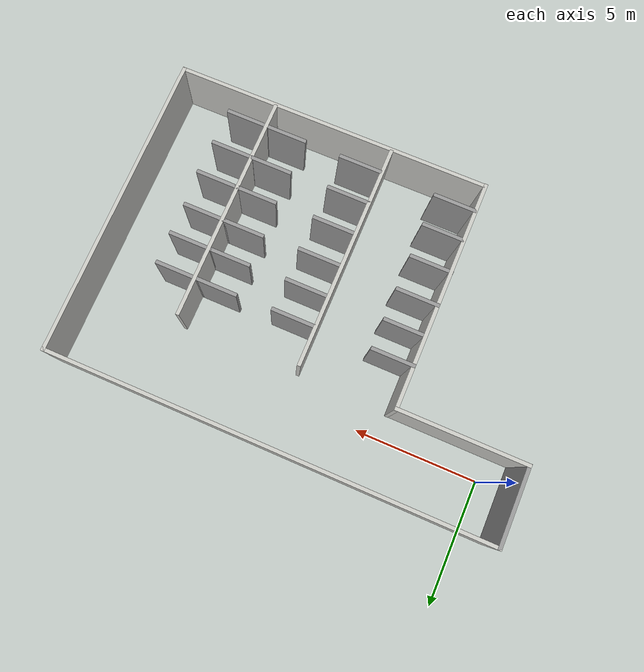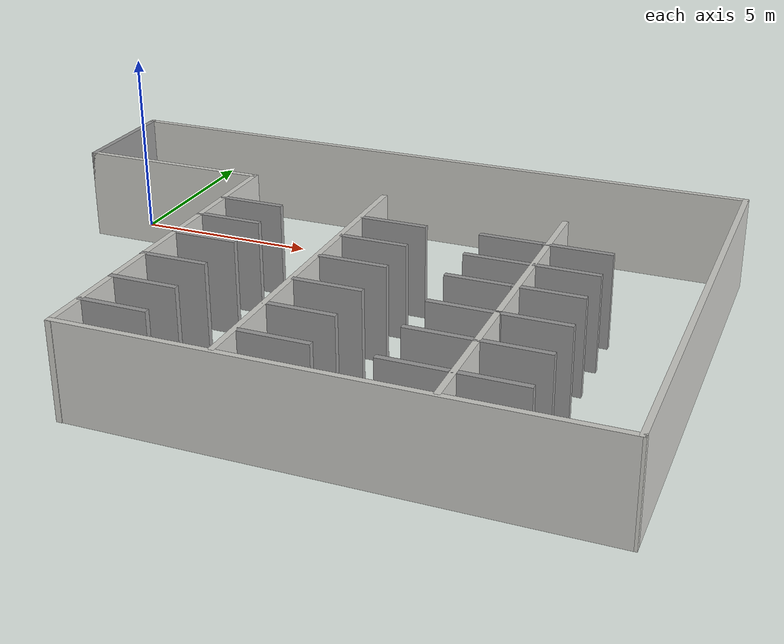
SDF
<?xml version='1.0'?>
<sdf version='1.7'>
  <model name='modwalls'>
    <pose>7.93964 -4.18565 0 0 -0 0</pose>
    <link name='Wall_0'>
      <collision name='Wall_0_Collision'>
        <geometry>
          <box>
            <size>5.25 0.15 2.5</size>
          </box>
        </geometry>
        <pose>0 0 1.25 0 -0 0</pose>
      </collision>
      <visual name='Wall_0_Visual'>
        <pose>0 0 1.25 0 -0 0</pose>
        <geometry>
          <box>
            <size>5.25 0.15 2.5</size>
          </box>
        </geometry>
        <material>
          <script>
            <uri>file://media/materials/scripts/gazebo.material</uri>
            <name>Gazebo/CeilingTiled</name>
          </script>
          <ambient>1 1 1 1</ambient>
        </material>
        <meta>
          <layer>0</layer>
        </meta>
      </visual>
      <pose>-6.37546 3.12129 0 0 -0 0</pose>
    </link>
    <link name='Wall_10'>
      <collision name='Wall_10_Collision'>
        <geometry>
          <box>
            <size>9.25 0.15 2.5</size>
          </box>
        </geometry>
        <pose>0 0 1.25 0 -0 0</pose>
      </collision>
      <visual name='Wall_10_Visual'>
        <pose>0 0 1.25 0 -0 0</pose>
        <geometry>
          <box>
            <size>9.25 0.15 2.5</size>
          </box>
        </geometry>
        <material>
          <script>
            <uri>file://media/materials/scripts/gazebo.material</uri>
            <name>Gazebo/CeilingTiled</name>
          </script>
          <ambient>1 1 1 1</ambient>
        </material>
        <meta>
          <layer>0</layer>
        </meta>
      </visual>
      <pose>0.045024 -1.54331 0 0 -0 1.5708</pose>
    </link>
    <link name='Wall_12'>
      <collision name='Wall_12_Collision'>
        <geometry>
          <box>
            <size>9.25 0.15 2.5</size>
          </box>
        </geometry>
        <pose>0 0 1.25 0 -0 0</pose>
      </collision>
      <visual name='Wall_12_Visual'>
        <pose>0 0 1.25 0 -0 0</pose>
        <geometry>
          <box>
            <size>9.25 0.15 2.5</size>
          </box>
        </geometry>
        <material>
          <script>
            <uri>file://media/materials/scripts/gazebo.material</uri>
            <name>Gazebo/CeilingTiled</name>
          </script>
          <ambient>1 1 1 1</ambient>
        </material>
        <meta>
          <layer>0</layer>
        </meta>
      </visual>
      <pose>4.94139 -1.52434 0 0 -0 1.5708</pose>
    </link>
    <link name='Wall_16'>
      <collision name='Wall_16_Collision'>
        <geometry>
          <box>
            <size>1.75 0.15 2.5</size>
          </box>
        </geometry>
        <pose>0 0 1.25 0 -0 0</pose>
      </collision>
      <visual name='Wall_16_Visual'>
        <pose>0 0 1.25 0 -0 0</pose>
        <geometry>
          <box>
            <size>1.75 0.15 2.5</size>
          </box>
        </geometry>
        <material>
          <script>
            <uri>file://media/materials/scripts/gazebo.material</uri>
            <name>Gazebo/Grey</name>
          </script>
          <ambient>1 1 1 1</ambient>
        </material>
        <meta>
          <layer>0</layer>
        </meta>
      </visual>
      <pose>-3.009 1.40429 0 0 -0 0</pose>
    </link>
    <link name='Wall_18'>
      <collision name='Wall_18_Collision'>
        <geometry>
          <box>
            <size>1.75 0.15 2.5</size>
          </box>
        </geometry>
        <pose>0 0 1.25 0 -0 0</pose>
      </collision>
      <visual name='Wall_18_Visual'>
        <pose>0 0 1.25 0 -0 0</pose>
        <geometry>
          <box>
            <size>1.75 0.15 2.5</size>
          </box>
        </geometry>
        <material>
          <script>
            <uri>file://media/materials/scripts/gazebo.material</uri>
            <name>Gazebo/Grey</name>
          </script>
          <ambient>1 1 1 1</ambient>
        </material>
        <meta>
          <layer>0</layer>
        </meta>
      </visual>
      <pose>-3.01741 0.196371 0 0 -0 0</pose>
    </link>
    <link name='Wall_20'>
      <collision name='Wall_20_Collision'>
        <geometry>
          <box>
            <size>1.75 0.15 2.5</size>
          </box>
        </geometry>
        <pose>0 0 1.25 0 -0 0</pose>
      </collision>
      <visual name='Wall_20_Visual'>
        <pose>0 0 1.25 0 -0 0</pose>
        <geometry>
          <box>
            <size>1.75 0.15 2.5</size>
          </box>
        </geometry>
        <material>
          <script>
            <uri>file://media/materials/scripts/gazebo.material</uri>
            <name>Gazebo/Grey</name>
          </script>
          <ambient>1 1 1 1</ambient>
        </material>
        <meta>
          <layer>0</layer>
        </meta>
      </visual>
      <pose>-3.0146 -1.07174 0 0 -0 0</pose>
    </link>
    <link name='Wall_24'>
      <collision name='Wall_24_Collision'>
        <geometry>
          <box>
            <size>1.75 0.15 2.5</size>
          </box>
        </geometry>
        <pose>0 0 1.25 0 -0 0</pose>
      </collision>
      <visual name='Wall_24_Visual'>
        <pose>0 0 1.25 0 -0 0</pose>
        <geometry>
          <box>
            <size>1.75 0.15 2.5</size>
          </box>
        </geometry>
        <material>
          <script>
            <uri>file://media/materials/scripts/gazebo.material</uri>
            <name>Gazebo/Grey</name>
          </script>
          <ambient>1 1 1 1</ambient>
        </material>
        <meta>
          <layer>0</layer>
        </meta>
      </visual>
      <pose>-3.00778 -3.83016 0 0 -0 0</pose>
    </link>
    <link name='Wall_28'>
      <collision name='Wall_28_Collision'>
        <geometry>
          <box>
            <size>1.75 0.15 2.5</size>
          </box>
        </geometry>
        <pose>0 0 1.25 0 -0 0</pose>
      </collision>
      <visual name='Wall_28_Visual'>
        <pose>0 0 1.25 0 -0 0</pose>
        <geometry>
          <box>
            <size>1.75 0.15 2.5</size>
          </box>
        </geometry>
        <material>
          <script>
            <uri>file://media/materials/scripts/gazebo.material</uri>
            <name>Gazebo/Grey</name>
          </script>
          <ambient>1 1 1 1</ambient>
        </material>
        <meta>
          <layer>0</layer>
        </meta>
      </visual>
      <pose>-2.984 -5.10548 0 0 -0 0</pose>
    </link>
    <link name='Wall_3'>
      <collision name='Wall_3_Collision'>
        <geometry>
          <box>
            <size>3.25 0.15 2.5</size>
          </box>
        </geometry>
        <pose>0 0 1.25 0 -0 0</pose>
      </collision>
      <visual name='Wall_3_Visual'>
        <pose>0 0 1.25 0 -0 0</pose>
        <geometry>
          <box>
            <size>3.25 0.15 2.5</size>
          </box>
        </geometry>
        <material>
          <script>
            <uri>file://media/materials/scripts/gazebo.material</uri>
            <name>Gazebo/Grey</name>
          </script>
          <ambient>1 1 1 1</ambient>
        </material>
        <meta>
          <layer>0</layer>
        </meta>
      </visual>
      <pose>-8.92546 4.67129 0 0 -0 1.5708</pose>
    </link>
    <link name='Wall_32'>
      <collision name='Wall_32_Collision'>
        <geometry>
          <box>
            <size>1.75 0.15 2.5</size>
          </box>
        </geometry>
        <pose>0 0 1.25 0 -0 0</pose>
      </collision>
      <visual name='Wall_32_Visual'>
        <pose>0 0 1.25 0 -0 0</pose>
        <geometry>
          <box>
            <size>1.75 0.15 2.5</size>
          </box>
        </geometry>
        <material>
          <script>
            <uri>file://media/materials/scripts/gazebo.material</uri>
            <name>Gazebo/Grey</name>
          </script>
          <ambient>1 1 1 1</ambient>
        </material>
        <meta>
          <layer>0</layer>
        </meta>
      </visual>
      <pose>-3.03139 -2.47058 0 0 -0 0</pose>
    </link>
    <link name='Wall_34'>
      <collision name='Wall_34_Collision'>
        <geometry>
          <box>
            <size>1.75 0.15 2.5</size>
          </box>
        </geometry>
        <pose>0 0 1.25 0 -0 0</pose>
      </collision>
      <visual name='Wall_34_Visual'>
        <pose>0 0 1.25 0 -0 0</pose>
        <geometry>
          <box>
            <size>1.75 0.15 2.5</size>
          </box>
        </geometry>
        <material>
          <script>
            <uri>file://media/materials/scripts/gazebo.material</uri>
            <name>Gazebo/Grey</name>
          </script>
          <ambient>1 1 1 1</ambient>
        </material>
        <meta>
          <layer>0</layer>
        </meta>
      </visual>
      <pose>0.950712 -5.15453 0 0 -0 0</pose>
    </link>
    <link name='Wall_36'>
      <collision name='Wall_36_Collision'>
        <geometry>
          <box>
            <size>1.75 0.15 2.5</size>
          </box>
        </geometry>
        <pose>0 0 1.25 0 -0 0</pose>
      </collision>
      <visual name='Wall_36_Visual'>
        <pose>0 0 1.25 0 -0 0</pose>
        <geometry>
          <box>
            <size>1.75 0.15 2.5</size>
          </box>
        </geometry>
        <material>
          <script>
            <uri>file://media/materials/scripts/gazebo.material</uri>
            <name>Gazebo/Grey</name>
          </script>
          <ambient>1 1 1 1</ambient>
        </material>
        <meta>
          <layer>0</layer>
        </meta>
      </visual>
      <pose>0.89612 -3.78973 0 0 -0 0</pose>
    </link>
    <link name='Wall_38'>
      <collision name='Wall_38_Collision'>
        <geometry>
          <box>
            <size>1.75 0.15 2.5</size>
          </box>
        </geometry>
        <pose>0 0 1.25 0 -0 0</pose>
      </collision>
      <visual name='Wall_38_Visual'>
        <pose>0 0 1.25 0 -0 0</pose>
        <geometry>
          <box>
            <size>1.75 0.15 2.5</size>
          </box>
        </geometry>
        <material>
          <script>
            <uri>file://media/materials/scripts/gazebo.material</uri>
            <name>Gazebo/Grey</name>
          </script>
          <ambient>1 1 1 1</ambient>
        </material>
        <meta>
          <layer>0</layer>
        </meta>
      </visual>
      <pose>0.932515 -2.44314 0 0 -0 0</pose>
    </link>
    <link name='Wall_4'>
      <collision name='Wall_4_Collision'>
        <geometry>
          <box>
            <size>18 0.15 2.5</size>
          </box>
        </geometry>
        <pose>0 0 1.25 0 -0 0</pose>
      </collision>
      <visual name='Wall_4_Visual'>
        <pose>0 0 1.25 0 -0 0</pose>
        <geometry>
          <box>
            <size>18 0.15 2.5</size>
          </box>
        </geometry>
        <material>
          <script>
            <uri>file://media/materials/scripts/gazebo.material</uri>
            <name>Gazebo/CeilingTiled</name>
          </script>
          <ambient>1 1 1 1</ambient>
        </material>
        <meta>
          <layer>0</layer>
        </meta>
      </visual>
      <pose>-0.000462 6.22129 0 0 -0 0</pose>
    </link>
    <link name='Wall_40'>
      <collision name='Wall_40_Collision'>
        <geometry>
          <box>
            <size>1.75 0.15 2.5</size>
          </box>
        </geometry>
        <pose>0 0 1.25 0 -0 0</pose>
      </collision>
      <visual name='Wall_40_Visual'>
        <pose>0 0 1.25 0 -0 0</pose>
        <geometry>
          <box>
            <size>1.75 0.15 2.5</size>
          </box>
        </geometry>
        <material>
          <script>
            <uri>file://media/materials/scripts/gazebo.material</uri>
            <name>Gazebo/Grey</name>
          </script>
          <ambient>1 1 1 1</ambient>
        </material>
        <meta>
          <layer>0</layer>
        </meta>
      </visual>
      <pose>0.950712 -1.06015 0 0 -0 0</pose>
    </link>
    <link name='Wall_42'>
      <collision name='Wall_42_Collision'>
        <geometry>
          <box>
            <size>1.75 0.15 2.5</size>
          </box>
        </geometry>
        <pose>0 0 1.25 0 -0 0</pose>
      </collision>
      <visual name='Wall_42_Visual'>
        <pose>0 0 1.25 0 -0 0</pose>
        <geometry>
          <box>
            <size>1.75 0.15 2.5</size>
          </box>
        </geometry>
        <material>
          <script>
            <uri>file://media/materials/scripts/gazebo.material</uri>
            <name>Gazebo/Grey</name>
          </script>
          <ambient>1 1 1 1</ambient>
        </material>
        <meta>
          <layer>0</layer>
        </meta>
      </visual>
      <pose>0.932515 0.231859 0 0 -0 0</pose>
    </link>
    <link name='Wall_44'>
      <collision name='Wall_44_Collision'>
        <geometry>
          <box>
            <size>1.75 0.15 2.5</size>
          </box>
        </geometry>
        <pose>0 0 1.25 0 -0 0</pose>
      </collision>
      <visual name='Wall_44_Visual'>
        <pose>0 0 1.25 0 -0 0</pose>
        <geometry>
          <box>
            <size>1.75 0.15 2.5</size>
          </box>
        </geometry>
        <material>
          <script>
            <uri>file://media/materials/scripts/gazebo.material</uri>
            <name>Gazebo/Grey</name>
          </script>
          <ambient>1 1 1 1</ambient>
        </material>
        <meta>
          <layer>0</layer>
        </meta>
      </visual>
      <pose>0.950712 1.48747 0 0 -0 0</pose>
    </link>
    <link name='Wall_46'>
      <collision name='Wall_46_Collision'>
        <geometry>
          <box>
            <size>1.75 0.15 2.5</size>
          </box>
        </geometry>
        <pose>0 0 1.25 0 -0 0</pose>
      </collision>
      <visual name='Wall_46_Visual'>
        <pose>0 0 1.25 0 -0 0</pose>
        <geometry>
          <box>
            <size>1.75 0.15 2.5</size>
          </box>
        </geometry>
        <material>
          <script>
            <uri>file://media/materials/scripts/gazebo.material</uri>
            <name>Gazebo/Grey</name>
          </script>
          <ambient>1 1 1 1</ambient>
        </material>
        <meta>
          <layer>0</layer>
        </meta>
      </visual>
      <pose>4.11839 -5.17272 0 0 -0 3.14159</pose>
    </link>
    <link name='Wall_48'>
      <collision name='Wall_48_Collision'>
        <geometry>
          <box>
            <size>1.75 0.15 2.5</size>
          </box>
        </geometry>
        <pose>0 0 1.25 0 -0 0</pose>
      </collision>
      <visual name='Wall_48_Visual'>
        <pose>0 0 1.25 0 -0 0</pose>
        <geometry>
          <box>
            <size>1.75 0.15 2.5</size>
          </box>
        </geometry>
        <material>
          <script>
            <uri>file://media/materials/scripts/gazebo.material</uri>
            <name>Gazebo/Grey</name>
          </script>
          <ambient>1 1 1 1</ambient>
        </material>
        <meta>
          <layer>0</layer>
        </meta>
      </visual>
      <pose>4.13659 -3.73514 0 0 -0 3.14159</pose>
    </link>
    <link name='Wall_5'>
      <collision name='Wall_5_Collision'>
        <geometry>
          <box>
            <size>12.5 0.15 2.5</size>
          </box>
        </geometry>
        <pose>0 0 1.25 0 -0 0</pose>
      </collision>
      <visual name='Wall_5_Visual'>
        <pose>0 0 1.25 0 -0 0</pose>
        <geometry>
          <box>
            <size>12.5 0.15 2.5</size>
          </box>
        </geometry>
        <material>
          <script>
            <uri>file://media/materials/scripts/gazebo.material</uri>
            <name>Gazebo/CeilingTiled</name>
          </script>
          <ambient>1 1 1 1</ambient>
        </material>
        <meta>
          <layer>0</layer>
        </meta>
      </visual>
      <pose>8.92454 0.046287 0 0 -0 -1.5708</pose>
    </link>
    <link name='Wall_50'>
      <collision name='Wall_50_Collision'>
        <geometry>
          <box>
            <size>1.75 0.15 2.5</size>
          </box>
        </geometry>
        <pose>0 0 1.25 0 -0 0</pose>
      </collision>
      <visual name='Wall_50_Visual'>
        <pose>0 0 1.25 0 -0 0</pose>
        <geometry>
          <box>
            <size>1.75 0.15 2.5</size>
          </box>
        </geometry>
        <material>
          <script>
            <uri>file://media/materials/scripts/gazebo.material</uri>
            <name>Gazebo/Grey</name>
          </script>
          <ambient>1 1 1 1</ambient>
        </material>
        <meta>
          <layer>0</layer>
        </meta>
      </visual>
      <pose>4.17162 -2.38855 0 0 -0 0</pose>
    </link>
    <link name='Wall_52'>
      <collision name='Wall_52_Collision'>
        <geometry>
          <box>
            <size>1.75 0.15 2.5</size>
          </box>
        </geometry>
        <pose>0 0 1.25 0 -0 0</pose>
      </collision>
      <visual name='Wall_52_Visual'>
        <pose>0 0 1.25 0 -0 0</pose>
        <geometry>
          <box>
            <size>1.75 0.15 2.5</size>
          </box>
        </geometry>
        <material>
          <script>
            <uri>file://media/materials/scripts/gazebo.material</uri>
            <name>Gazebo/Grey</name>
          </script>
          <ambient>1 1 1 1</ambient>
        </material>
        <meta>
          <layer>0</layer>
        </meta>
      </visual>
      <pose>4.08064 -0.969159 0 0 -0 0</pose>
    </link>
    <link name='Wall_54'>
      <collision name='Wall_54_Collision'>
        <geometry>
          <box>
            <size>1.75 0.15 2.5</size>
          </box>
        </geometry>
        <pose>0 0 1.25 0 -0 0</pose>
      </collision>
      <visual name='Wall_54_Visual'>
        <pose>0 0 1.25 0 -0 0</pose>
        <geometry>
          <box>
            <size>1.75 0.15 2.5</size>
          </box>
        </geometry>
        <material>
          <script>
            <uri>file://media/materials/scripts/gazebo.material</uri>
            <name>Gazebo/Grey</name>
          </script>
          <ambient>1 1 1 1</ambient>
        </material>
        <meta>
          <layer>0</layer>
        </meta>
      </visual>
      <pose>4.09884 0.286451 0 0 -0 0</pose>
    </link>
    <link name='Wall_56'>
      <collision name='Wall_56_Collision'>
        <geometry>
          <box>
            <size>1.75 0.15 2.5</size>
          </box>
        </geometry>
        <pose>0 0 1.25 0 -0 0</pose>
      </collision>
      <visual name='Wall_56_Visual'>
        <pose>0 0 1.25 0 -0 0</pose>
        <geometry>
          <box>
            <size>1.75 0.15 2.5</size>
          </box>
        </geometry>
        <material>
          <script>
            <uri>file://media/materials/scripts/gazebo.material</uri>
            <name>Gazebo/Grey</name>
          </script>
          <ambient>1 1 1 1</ambient>
        </material>
        <meta>
          <layer>0</layer>
        </meta>
      </visual>
      <pose>4.08064 1.54206 0 0 -0 0</pose>
    </link>
    <link name='Wall_58'>
      <collision name='Wall_58_Collision'>
        <geometry>
          <box>
            <size>1.75 0.15 2.5</size>
          </box>
        </geometry>
        <pose>0 0 1.25 0 -0 0</pose>
      </collision>
      <visual name='Wall_58_Visual'>
        <pose>0 0 1.25 0 -0 0</pose>
        <geometry>
          <box>
            <size>1.75 0.15 2.5</size>
          </box>
        </geometry>
        <material>
          <script>
            <uri>file://media/materials/scripts/gazebo.material</uri>
            <name>Gazebo/Grey</name>
          </script>
          <ambient>1 1 1 1</ambient>
        </material>
        <meta>
          <layer>0</layer>
        </meta>
      </visual>
      <pose>5.71839 -5.17272 0 0 -0 0</pose>
    </link>
    <link name='Wall_6'>
      <collision name='Wall_6_Collision'>
        <geometry>
          <box>
            <size>12.896 0.15 2.5</size>
          </box>
        </geometry>
        <pose>0 0 1.25 0 -0 0</pose>
      </collision>
      <visual name='Wall_6_Visual'>
        <pose>0 0 1.25 0 -0 0</pose>
        <geometry>
          <box>
            <size>12.896 0.15 2.5</size>
          </box>
        </geometry>
        <material>
          <script>
            <uri>file://media/materials/scripts/gazebo.material</uri>
            <name>Gazebo/CeilingTiled</name>
          </script>
          <ambient>1 1 1 1</ambient>
        </material>
        <meta>
          <layer>0</layer>
        </meta>
      </visual>
      <pose>2.5521 -6.16839 0 0 -0 -3.13537</pose>
    </link>
    <link name='Wall_60'>
      <collision name='Wall_60_Collision'>
        <geometry>
          <box>
            <size>1.75 0.15 2.5</size>
          </box>
        </geometry>
        <pose>0 0 1.25 0 -0 0</pose>
      </collision>
      <visual name='Wall_60_Visual'>
        <pose>0 0 1.25 0 -0 0</pose>
        <geometry>
          <box>
            <size>1.75 0.15 2.5</size>
          </box>
        </geometry>
        <material>
          <script>
            <uri>file://media/materials/scripts/gazebo.material</uri>
            <name>Gazebo/Grey</name>
          </script>
          <ambient>1 1 1 1</ambient>
        </material>
        <meta>
          <layer>0</layer>
        </meta>
      </visual>
      <pose>5.73659 -3.73514 0 0 -0 0</pose>
    </link>
    <link name='Wall_62'>
      <collision name='Wall_62_Collision'>
        <geometry>
          <box>
            <size>1.75 0.15 2.5</size>
          </box>
        </geometry>
        <pose>0 0 1.25 0 -0 0</pose>
      </collision>
      <visual name='Wall_62_Visual'>
        <pose>0 0 1.25 0 -0 0</pose>
        <geometry>
          <box>
            <size>1.75 0.15 2.5</size>
          </box>
        </geometry>
        <material>
          <script>
            <uri>file://media/materials/scripts/gazebo.material</uri>
            <name>Gazebo/Grey</name>
          </script>
          <ambient>1 1 1 1</ambient>
        </material>
        <meta>
          <layer>0</layer>
        </meta>
      </visual>
      <pose>5.77163 -2.38855 0 0 -0 0</pose>
    </link>
    <link name='Wall_64'>
      <collision name='Wall_64_Collision'>
        <geometry>
          <box>
            <size>1.75 0.15 2.5</size>
          </box>
        </geometry>
        <pose>0 0 1.25 0 -0 0</pose>
      </collision>
      <visual name='Wall_64_Visual'>
        <pose>0 0 1.25 0 -0 0</pose>
        <geometry>
          <box>
            <size>1.75 0.15 2.5</size>
          </box>
        </geometry>
        <material>
          <script>
            <uri>file://media/materials/scripts/gazebo.material</uri>
            <name>Gazebo/Grey</name>
          </script>
          <ambient>1 1 1 1</ambient>
        </material>
        <meta>
          <layer>0</layer>
        </meta>
      </visual>
      <pose>5.68064 -0.969159 0 0 -0 0</pose>
    </link>
    <link name='Wall_66'>
      <collision name='Wall_66_Collision'>
        <geometry>
          <box>
            <size>1.75 0.15 2.5</size>
          </box>
        </geometry>
        <pose>0 0 1.25 0 -0 0</pose>
      </collision>
      <visual name='Wall_66_Visual'>
        <pose>0 0 1.25 0 -0 0</pose>
        <geometry>
          <box>
            <size>1.75 0.15 2.5</size>
          </box>
        </geometry>
        <material>
          <script>
            <uri>file://media/materials/scripts/gazebo.material</uri>
            <name>Gazebo/Grey</name>
          </script>
          <ambient>1 1 1 1</ambient>
        </material>
        <meta>
          <layer>0</layer>
        </meta>
      </visual>
      <pose>5.69884 0.286451 0 0 -0 0</pose>
    </link>
    <link name='Wall_68'>
      <collision name='Wall_68_Collision'>
        <geometry>
          <box>
            <size>1.75 0.15 2.5</size>
          </box>
        </geometry>
        <pose>0 0 1.25 0 -0 0</pose>
      </collision>
      <visual name='Wall_68_Visual'>
        <pose>0 0 1.25 0 -0 0</pose>
        <geometry>
          <box>
            <size>1.75 0.15 2.5</size>
          </box>
        </geometry>
        <material>
          <script>
            <uri>file://media/materials/scripts/gazebo.material</uri>
            <name>Gazebo/Grey</name>
          </script>
          <ambient>1 1 1 1</ambient>
        </material>
        <meta>
          <layer>0</layer>
        </meta>
      </visual>
      <pose>5.68064 1.54206 0 0 -0 0</pose>
    </link>
    <link name='Wall_7'>
      <collision name='Wall_7_Collision'>
        <geometry>
          <box>
            <size>9.5 0.15 2.5</size>
          </box>
        </geometry>
        <pose>0 0 1.25 0 -0 0</pose>
      </collision>
      <visual name='Wall_7_Visual'>
        <pose>0 0 1.25 0 -0 0</pose>
        <geometry>
          <box>
            <size>9.5 0.15 2.5</size>
          </box>
        </geometry>
        <material>
          <script>
            <uri>file://media/materials/scripts/gazebo.material</uri>
            <name>Gazebo/CeilingTiled</name>
          </script>
          <ambient>1 1 1 1</ambient>
        </material>
        <meta>
          <layer>0</layer>
        </meta>
      </visual>
      <pose>-3.82033 -1.54629 0 0 -0 1.5708</pose>
    </link>
    <static>1</static>
  </model>
</sdf>
